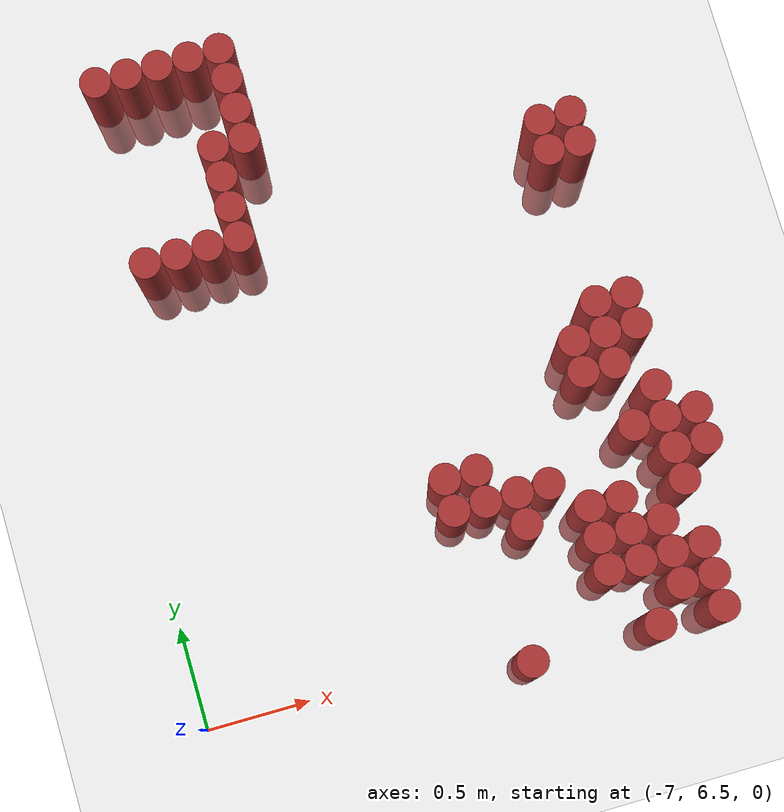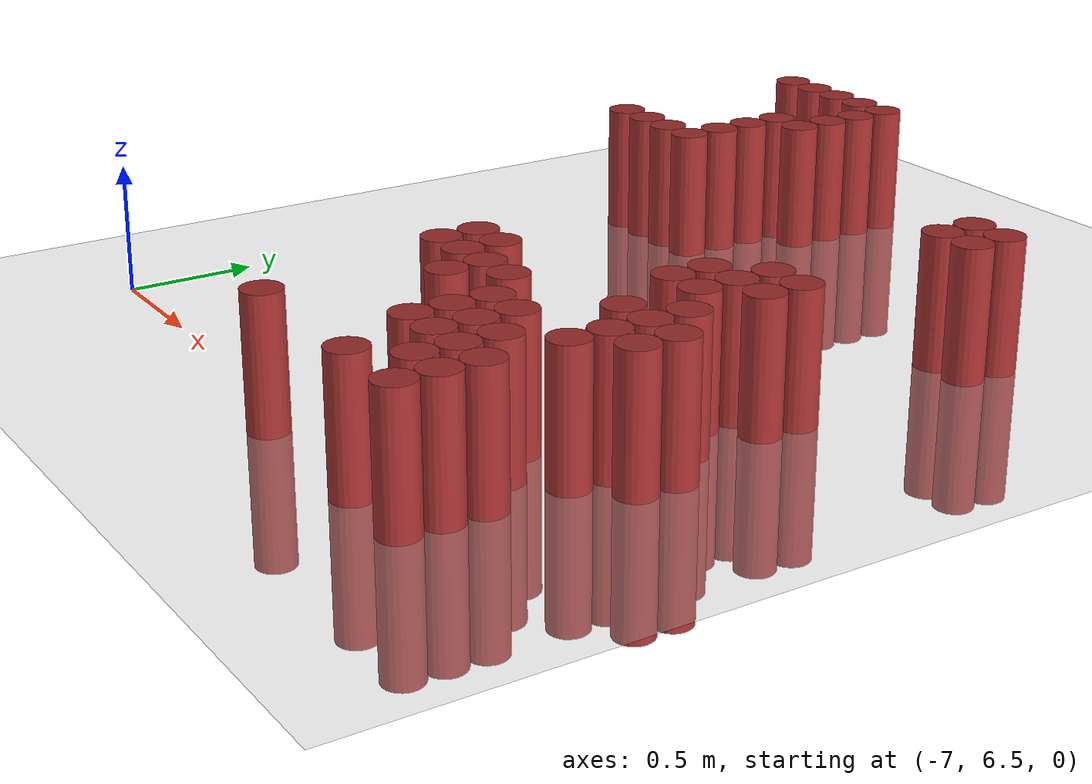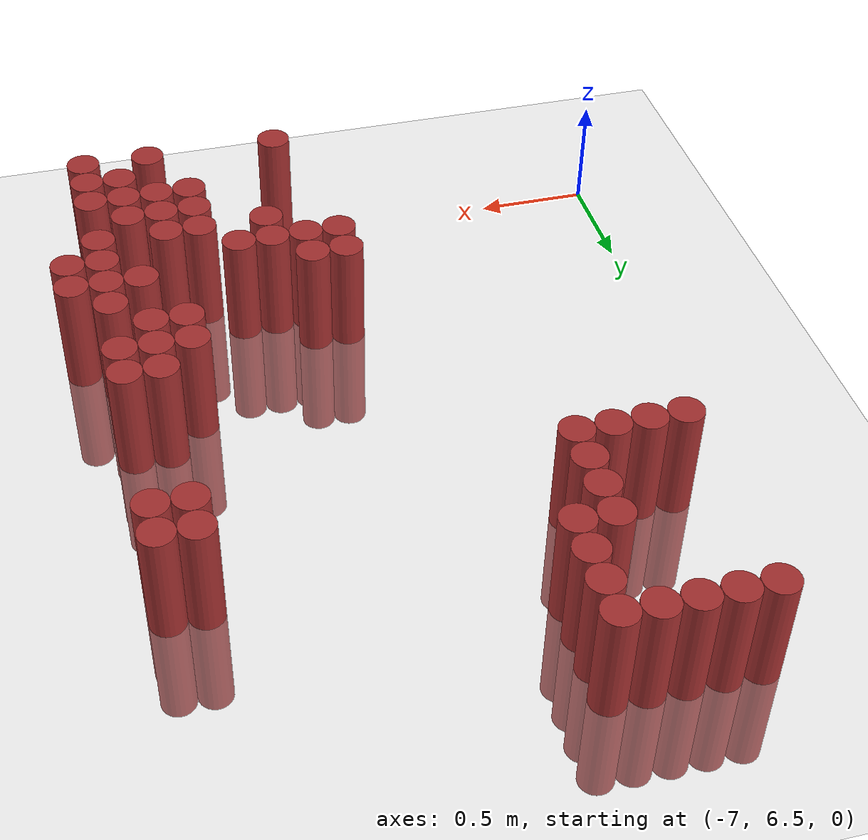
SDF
<sdf version="1.6">
 <world name="default">
  <model name="ground_plane">
   <static>1</static>
   <link name="link">
    <collision name="collision">
     <geometry><plane><normal>0 0 1</normal><size>100 100</size></plane></geometry>
     <surface><friction><ode><mu>100</mu><mu2>50</mu2></ode></friction></surface>
    </collision>
    <visual name="visual">
     <cast_shadows>0</cast_shadows>
     <geometry><plane><normal>0 0 1</normal><size>100 100</size></plane></geometry>
     <material>
      <script><uri>file://media/materials/scripts/gazebo.material</uri><name>Gazebo/Grey</name></script>
     </material>
    </visual>
   </link>
  </model>
  <model name="unit_cylinder_206">
   <static>1</static>
   <pose>-6.675000 8.625000 0.000000 0.000000 0.000000 0.000000</pose>
   <link name="link">
    <inertial>
     <mass>1</mass>
     <inertia><ixx>0.145833</ixx><ixy>0</ixy><ixz>0</ixz><iyy>0.145833</iyy><iyz>0</iyz><izz>0.125</izz></inertia>
    </inertial>
    <collision name="collision">
     <geometry><cylinder><radius>0.075000</radius><length>1</length></cylinder></geometry>
    </collision>
    <visual name="visual">
     <geometry><cylinder><radius>0.075000</radius><length>1</length></cylinder></geometry>
     <material>
      <ambient>0.648000 0.192000 0.192000 1</ambient>
      <diffuse>0.648000 0.192000 0.192000 1</diffuse>
     </material>
     <material>
      <script><name>Gazebo/Grey</name><uri>file://media/materials/scripts/gazebo.material</uri></script>
     </material>
    </visual>
   </link>
  </model>
  <model name="unit_cylinder_207">
   <static>1</static>
   <pose>-6.675000 9.525000 0.000000 0.000000 0.000000 0.000000</pose>
   <link name="link">
    <inertial>
     <mass>1</mass>
     <inertia><ixx>0.145833</ixx><ixy>0</ixy><ixz>0</ixz><iyy>0.145833</iyy><iyz>0</iyz><izz>0.125</izz></inertia>
    </inertial>
    <collision name="collision">
     <geometry><cylinder><radius>0.075000</radius><length>1</length></cylinder></geometry>
    </collision>
    <visual name="visual">
     <geometry><cylinder><radius>0.075000</radius><length>1</length></cylinder></geometry>
     <material>
      <ambient>0.648000 0.192000 0.192000 1</ambient>
      <diffuse>0.648000 0.192000 0.192000 1</diffuse>
     </material>
     <material>
      <script><name>Gazebo/Grey</name><uri>file://media/materials/scripts/gazebo.material</uri></script>
     </material>
    </visual>
   </link>
  </model>
  <model name="unit_cylinder_208">
   <static>1</static>
   <pose>-6.525000 8.625000 0.000000 0.000000 0.000000 0.000000</pose>
   <link name="link">
    <inertial>
     <mass>1</mass>
     <inertia><ixx>0.145833</ixx><ixy>0</ixy><ixz>0</ixz><iyy>0.145833</iyy><iyz>0</iyz><izz>0.125</izz></inertia>
    </inertial>
    <collision name="collision">
     <geometry><cylinder><radius>0.075000</radius><length>1</length></cylinder></geometry>
    </collision>
    <visual name="visual">
     <geometry><cylinder><radius>0.075000</radius><length>1</length></cylinder></geometry>
     <material>
      <ambient>0.648000 0.192000 0.192000 1</ambient>
      <diffuse>0.648000 0.192000 0.192000 1</diffuse>
     </material>
     <material>
      <script><name>Gazebo/Grey</name><uri>file://media/materials/scripts/gazebo.material</uri></script>
     </material>
    </visual>
   </link>
  </model>
  <model name="unit_cylinder_209">
   <static>1</static>
   <pose>-6.525000 9.525000 0.000000 0.000000 0.000000 0.000000</pose>
   <link name="link">
    <inertial>
     <mass>1</mass>
     <inertia><ixx>0.145833</ixx><ixy>0</ixy><ixz>0</ixz><iyy>0.145833</iyy><iyz>0</iyz><izz>0.125</izz></inertia>
    </inertial>
    <collision name="collision">
     <geometry><cylinder><radius>0.075000</radius><length>1</length></cylinder></geometry>
    </collision>
    <visual name="visual">
     <geometry><cylinder><radius>0.075000</radius><length>1</length></cylinder></geometry>
     <material>
      <ambient>0.648000 0.192000 0.192000 1</ambient>
      <diffuse>0.648000 0.192000 0.192000 1</diffuse>
     </material>
     <material>
      <script><name>Gazebo/Grey</name><uri>file://media/materials/scripts/gazebo.material</uri></script>
     </material>
    </visual>
   </link>
  </model>
  <model name="unit_cylinder_210">
   <static>1</static>
   <pose>-6.375000 8.625000 0.000000 0.000000 0.000000 0.000000</pose>
   <link name="link">
    <inertial>
     <mass>1</mass>
     <inertia><ixx>0.145833</ixx><ixy>0</ixy><ixz>0</ixz><iyy>0.145833</iyy><iyz>0</iyz><izz>0.125</izz></inertia>
    </inertial>
    <collision name="collision">
     <geometry><cylinder><radius>0.075000</radius><length>1</length></cylinder></geometry>
    </collision>
    <visual name="visual">
     <geometry><cylinder><radius>0.075000</radius><length>1</length></cylinder></geometry>
     <material>
      <ambient>0.648000 0.192000 0.192000 1</ambient>
      <diffuse>0.648000 0.192000 0.192000 1</diffuse>
     </material>
     <material>
      <script><name>Gazebo/Grey</name><uri>file://media/materials/scripts/gazebo.material</uri></script>
     </material>
    </visual>
   </link>
  </model>
  <model name="unit_cylinder_211">
   <static>1</static>
   <pose>-6.375000 9.525000 0.000000 0.000000 0.000000 0.000000</pose>
   <link name="link">
    <inertial>
     <mass>1</mass>
     <inertia><ixx>0.145833</ixx><ixy>0</ixy><ixz>0</ixz><iyy>0.145833</iyy><iyz>0</iyz><izz>0.125</izz></inertia>
    </inertial>
    <collision name="collision">
     <geometry><cylinder><radius>0.075000</radius><length>1</length></cylinder></geometry>
    </collision>
    <visual name="visual">
     <geometry><cylinder><radius>0.075000</radius><length>1</length></cylinder></geometry>
     <material>
      <ambient>0.648000 0.192000 0.192000 1</ambient>
      <diffuse>0.648000 0.192000 0.192000 1</diffuse>
     </material>
     <material>
      <script><name>Gazebo/Grey</name><uri>file://media/materials/scripts/gazebo.material</uri></script>
     </material>
    </visual>
   </link>
  </model>
  <model name="unit_cylinder_212">
   <static>1</static>
   <pose>-6.225000 8.625000 0.000000 0.000000 0.000000 0.000000</pose>
   <link name="link">
    <inertial>
     <mass>1</mass>
     <inertia><ixx>0.145833</ixx><ixy>0</ixy><ixz>0</ixz><iyy>0.145833</iyy><iyz>0</iyz><izz>0.125</izz></inertia>
    </inertial>
    <collision name="collision">
     <geometry><cylinder><radius>0.075000</radius><length>1</length></cylinder></geometry>
    </collision>
    <visual name="visual">
     <geometry><cylinder><radius>0.075000</radius><length>1</length></cylinder></geometry>
     <material>
      <ambient>0.648000 0.192000 0.192000 1</ambient>
      <diffuse>0.648000 0.192000 0.192000 1</diffuse>
     </material>
     <material>
      <script><name>Gazebo/Grey</name><uri>file://media/materials/scripts/gazebo.material</uri></script>
     </material>
    </visual>
   </link>
  </model>
  <model name="unit_cylinder_213">
   <static>1</static>
   <pose>-6.225000 8.775000 0.000000 0.000000 0.000000 0.000000</pose>
   <link name="link">
    <inertial>
     <mass>1</mass>
     <inertia><ixx>0.145833</ixx><ixy>0</ixy><ixz>0</ixz><iyy>0.145833</iyy><iyz>0</iyz><izz>0.125</izz></inertia>
    </inertial>
    <collision name="collision">
     <geometry><cylinder><radius>0.075000</radius><length>1</length></cylinder></geometry>
    </collision>
    <visual name="visual">
     <geometry><cylinder><radius>0.075000</radius><length>1</length></cylinder></geometry>
     <material>
      <ambient>0.648000 0.192000 0.192000 1</ambient>
      <diffuse>0.648000 0.192000 0.192000 1</diffuse>
     </material>
     <material>
      <script><name>Gazebo/Grey</name><uri>file://media/materials/scripts/gazebo.material</uri></script>
     </material>
    </visual>
   </link>
  </model>
  <model name="unit_cylinder_214">
   <static>1</static>
   <pose>-6.225000 8.925000 0.000000 0.000000 0.000000 0.000000</pose>
   <link name="link">
    <inertial>
     <mass>1</mass>
     <inertia><ixx>0.145833</ixx><ixy>0</ixy><ixz>0</ixz><iyy>0.145833</iyy><iyz>0</iyz><izz>0.125</izz></inertia>
    </inertial>
    <collision name="collision">
     <geometry><cylinder><radius>0.075000</radius><length>1</length></cylinder></geometry>
    </collision>
    <visual name="visual">
     <geometry><cylinder><radius>0.075000</radius><length>1</length></cylinder></geometry>
     <material>
      <ambient>0.648000 0.192000 0.192000 1</ambient>
      <diffuse>0.648000 0.192000 0.192000 1</diffuse>
     </material>
     <material>
      <script><name>Gazebo/Grey</name><uri>file://media/materials/scripts/gazebo.material</uri></script>
     </material>
    </visual>
   </link>
  </model>
  <model name="unit_cylinder_215">
   <static>1</static>
   <pose>-6.225000 9.075000 0.000000 0.000000 0.000000 0.000000</pose>
   <link name="link">
    <inertial>
     <mass>1</mass>
     <inertia><ixx>0.145833</ixx><ixy>0</ixy><ixz>0</ixz><iyy>0.145833</iyy><iyz>0</iyz><izz>0.125</izz></inertia>
    </inertial>
    <collision name="collision">
     <geometry><cylinder><radius>0.075000</radius><length>1</length></cylinder></geometry>
    </collision>
    <visual name="visual">
     <geometry><cylinder><radius>0.075000</radius><length>1</length></cylinder></geometry>
     <material>
      <ambient>0.648000 0.192000 0.192000 1</ambient>
      <diffuse>0.648000 0.192000 0.192000 1</diffuse>
     </material>
     <material>
      <script><name>Gazebo/Grey</name><uri>file://media/materials/scripts/gazebo.material</uri></script>
     </material>
    </visual>
   </link>
  </model>
  <model name="unit_cylinder_216">
   <static>1</static>
   <pose>-6.225000 9.525000 0.000000 0.000000 0.000000 0.000000</pose>
   <link name="link">
    <inertial>
     <mass>1</mass>
     <inertia><ixx>0.145833</ixx><ixy>0</ixy><ixz>0</ixz><iyy>0.145833</iyy><iyz>0</iyz><izz>0.125</izz></inertia>
    </inertial>
    <collision name="collision">
     <geometry><cylinder><radius>0.075000</radius><length>1</length></cylinder></geometry>
    </collision>
    <visual name="visual">
     <geometry><cylinder><radius>0.075000</radius><length>1</length></cylinder></geometry>
     <material>
      <ambient>0.648000 0.192000 0.192000 1</ambient>
      <diffuse>0.648000 0.192000 0.192000 1</diffuse>
     </material>
     <material>
      <script><name>Gazebo/Grey</name><uri>file://media/materials/scripts/gazebo.material</uri></script>
     </material>
    </visual>
   </link>
  </model>
  <model name="unit_cylinder_217">
   <static>1</static>
   <pose>-6.075000 9.075000 0.000000 0.000000 0.000000 0.000000</pose>
   <link name="link">
    <inertial>
     <mass>1</mass>
     <inertia><ixx>0.145833</ixx><ixy>0</ixy><ixz>0</ixz><iyy>0.145833</iyy><iyz>0</iyz><izz>0.125</izz></inertia>
    </inertial>
    <collision name="collision">
     <geometry><cylinder><radius>0.075000</radius><length>1</length></cylinder></geometry>
    </collision>
    <visual name="visual">
     <geometry><cylinder><radius>0.075000</radius><length>1</length></cylinder></geometry>
     <material>
      <ambient>0.648000 0.192000 0.192000 1</ambient>
      <diffuse>0.648000 0.192000 0.192000 1</diffuse>
     </material>
     <material>
      <script><name>Gazebo/Grey</name><uri>file://media/materials/scripts/gazebo.material</uri></script>
     </material>
    </visual>
   </link>
  </model>
  <model name="unit_cylinder_218">
   <static>1</static>
   <pose>-6.075000 9.225000 0.000000 0.000000 0.000000 0.000000</pose>
   <link name="link">
    <inertial>
     <mass>1</mass>
     <inertia><ixx>0.145833</ixx><ixy>0</ixy><ixz>0</ixz><iyy>0.145833</iyy><iyz>0</iyz><izz>0.125</izz></inertia>
    </inertial>
    <collision name="collision">
     <geometry><cylinder><radius>0.075000</radius><length>1</length></cylinder></geometry>
    </collision>
    <visual name="visual">
     <geometry><cylinder><radius>0.075000</radius><length>1</length></cylinder></geometry>
     <material>
      <ambient>0.648000 0.192000 0.192000 1</ambient>
      <diffuse>0.648000 0.192000 0.192000 1</diffuse>
     </material>
     <material>
      <script><name>Gazebo/Grey</name><uri>file://media/materials/scripts/gazebo.material</uri></script>
     </material>
    </visual>
   </link>
  </model>
  <model name="unit_cylinder_219">
   <static>1</static>
   <pose>-6.075000 9.375000 0.000000 0.000000 0.000000 0.000000</pose>
   <link name="link">
    <inertial>
     <mass>1</mass>
     <inertia><ixx>0.145833</ixx><ixy>0</ixy><ixz>0</ixz><iyy>0.145833</iyy><iyz>0</iyz><izz>0.125</izz></inertia>
    </inertial>
    <collision name="collision">
     <geometry><cylinder><radius>0.075000</radius><length>1</length></cylinder></geometry>
    </collision>
    <visual name="visual">
     <geometry><cylinder><radius>0.075000</radius><length>1</length></cylinder></geometry>
     <material>
      <ambient>0.648000 0.192000 0.192000 1</ambient>
      <diffuse>0.648000 0.192000 0.192000 1</diffuse>
     </material>
     <material>
      <script><name>Gazebo/Grey</name><uri>file://media/materials/scripts/gazebo.material</uri></script>
     </material>
    </visual>
   </link>
  </model>
  <model name="unit_cylinder_220">
   <static>1</static>
   <pose>-6.075000 9.525000 0.000000 0.000000 0.000000 0.000000</pose>
   <link name="link">
    <inertial>
     <mass>1</mass>
     <inertia><ixx>0.145833</ixx><ixy>0</ixy><ixz>0</ixz><iyy>0.145833</iyy><iyz>0</iyz><izz>0.125</izz></inertia>
    </inertial>
    <collision name="collision">
     <geometry><cylinder><radius>0.075000</radius><length>1</length></cylinder></geometry>
    </collision>
    <visual name="visual">
     <geometry><cylinder><radius>0.075000</radius><length>1</length></cylinder></geometry>
     <material>
      <ambient>0.648000 0.192000 0.192000 1</ambient>
      <diffuse>0.648000 0.192000 0.192000 1</diffuse>
     </material>
     <material>
      <script><name>Gazebo/Grey</name><uri>file://media/materials/scripts/gazebo.material</uri></script>
     </material>
    </visual>
   </link>
  </model>
  <model name="unit_cylinder_222">
   <static>1</static>
   <pose>-5.625000 7.125000 0.000000 0.000000 0.000000 0.000000</pose>
   <link name="link">
    <inertial>
     <mass>1</mass>
     <inertia><ixx>0.145833</ixx><ixy>0</ixy><ixz>0</ixz><iyy>0.145833</iyy><iyz>0</iyz><izz>0.125</izz></inertia>
    </inertial>
    <collision name="collision">
     <geometry><cylinder><radius>0.075000</radius><length>1</length></cylinder></geometry>
    </collision>
    <visual name="visual">
     <geometry><cylinder><radius>0.075000</radius><length>1</length></cylinder></geometry>
     <material>
      <ambient>0.648000 0.192000 0.192000 1</ambient>
      <diffuse>0.648000 0.192000 0.192000 1</diffuse>
     </material>
     <material>
      <script><name>Gazebo/Grey</name><uri>file://media/materials/scripts/gazebo.material</uri></script>
     </material>
    </visual>
   </link>
  </model>
  <model name="unit_cylinder_223">
   <static>1</static>
   <pose>-5.625000 7.275000 0.000000 0.000000 0.000000 0.000000</pose>
   <link name="link">
    <inertial>
     <mass>1</mass>
     <inertia><ixx>0.145833</ixx><ixy>0</ixy><ixz>0</ixz><iyy>0.145833</iyy><iyz>0</iyz><izz>0.125</izz></inertia>
    </inertial>
    <collision name="collision">
     <geometry><cylinder><radius>0.075000</radius><length>1</length></cylinder></geometry>
    </collision>
    <visual name="visual">
     <geometry><cylinder><radius>0.075000</radius><length>1</length></cylinder></geometry>
     <material>
      <ambient>0.648000 0.192000 0.192000 1</ambient>
      <diffuse>0.648000 0.192000 0.192000 1</diffuse>
     </material>
     <material>
      <script><name>Gazebo/Grey</name><uri>file://media/materials/scripts/gazebo.material</uri></script>
     </material>
    </visual>
   </link>
  </model>
  <model name="unit_cylinder_226">
   <static>1</static>
   <pose>-5.475000 6.375000 0.000000 0.000000 0.000000 0.000000</pose>
   <link name="link">
    <inertial>
     <mass>1</mass>
     <inertia><ixx>0.145833</ixx><ixy>0</ixy><ixz>0</ixz><iyy>0.145833</iyy><iyz>0</iyz><izz>0.125</izz></inertia>
    </inertial>
    <collision name="collision">
     <geometry><cylinder><radius>0.075000</radius><length>1</length></cylinder></geometry>
    </collision>
    <visual name="visual">
     <geometry><cylinder><radius>0.075000</radius><length>1</length></cylinder></geometry>
     <material>
      <ambient>0.648000 0.192000 0.192000 1</ambient>
      <diffuse>0.648000 0.192000 0.192000 1</diffuse>
     </material>
     <material>
      <script><name>Gazebo/Grey</name><uri>file://media/materials/scripts/gazebo.material</uri></script>
     </material>
    </visual>
   </link>
  </model>
  <model name="unit_cylinder_227">
   <static>1</static>
   <pose>-5.475000 7.125000 0.000000 0.000000 0.000000 0.000000</pose>
   <link name="link">
    <inertial>
     <mass>1</mass>
     <inertia><ixx>0.145833</ixx><ixy>0</ixy><ixz>0</ixz><iyy>0.145833</iyy><iyz>0</iyz><izz>0.125</izz></inertia>
    </inertial>
    <collision name="collision">
     <geometry><cylinder><radius>0.075000</radius><length>1</length></cylinder></geometry>
    </collision>
    <visual name="visual">
     <geometry><cylinder><radius>0.075000</radius><length>1</length></cylinder></geometry>
     <material>
      <ambient>0.648000 0.192000 0.192000 1</ambient>
      <diffuse>0.648000 0.192000 0.192000 1</diffuse>
     </material>
     <material>
      <script><name>Gazebo/Grey</name><uri>file://media/materials/scripts/gazebo.material</uri></script>
     </material>
    </visual>
   </link>
  </model>
  <model name="unit_cylinder_228">
   <static>1</static>
   <pose>-5.475000 7.275000 0.000000 0.000000 0.000000 0.000000</pose>
   <link name="link">
    <inertial>
     <mass>1</mass>
     <inertia><ixx>0.145833</ixx><ixy>0</ixy><ixz>0</ixz><iyy>0.145833</iyy><iyz>0</iyz><izz>0.125</izz></inertia>
    </inertial>
    <collision name="collision">
     <geometry><cylinder><radius>0.075000</radius><length>1</length></cylinder></geometry>
    </collision>
    <visual name="visual">
     <geometry><cylinder><radius>0.075000</radius><length>1</length></cylinder></geometry>
     <material>
      <ambient>0.648000 0.192000 0.192000 1</ambient>
      <diffuse>0.648000 0.192000 0.192000 1</diffuse>
     </material>
     <material>
      <script><name>Gazebo/Grey</name><uri>file://media/materials/scripts/gazebo.material</uri></script>
     </material>
    </visual>
   </link>
  </model>
  <model name="unit_cylinder_231">
   <static>1</static>
   <pose>-5.325000 6.975000 0.000000 0.000000 0.000000 0.000000</pose>
   <link name="link">
    <inertial>
     <mass>1</mass>
     <inertia><ixx>0.145833</ixx><ixy>0</ixy><ixz>0</ixz><iyy>0.145833</iyy><iyz>0</iyz><izz>0.125</izz></inertia>
    </inertial>
    <collision name="collision">
     <geometry><cylinder><radius>0.075000</radius><length>1</length></cylinder></geometry>
    </collision>
    <visual name="visual">
     <geometry><cylinder><radius>0.075000</radius><length>1</length></cylinder></geometry>
     <material>
      <ambient>0.648000 0.192000 0.192000 1</ambient>
      <diffuse>0.648000 0.192000 0.192000 1</diffuse>
     </material>
     <material>
      <script><name>Gazebo/Grey</name><uri>file://media/materials/scripts/gazebo.material</uri></script>
     </material>
    </visual>
   </link>
  </model>
  <model name="unit_cylinder_232">
   <static>1</static>
   <pose>-5.325000 7.125000 0.000000 0.000000 0.000000 0.000000</pose>
   <link name="link">
    <inertial>
     <mass>1</mass>
     <inertia><ixx>0.145833</ixx><ixy>0</ixy><ixz>0</ixz><iyy>0.145833</iyy><iyz>0</iyz><izz>0.125</izz></inertia>
    </inertial>
    <collision name="collision">
     <geometry><cylinder><radius>0.075000</radius><length>1</length></cylinder></geometry>
    </collision>
    <visual name="visual">
     <geometry><cylinder><radius>0.075000</radius><length>1</length></cylinder></geometry>
     <material>
      <ambient>0.648000 0.192000 0.192000 1</ambient>
      <diffuse>0.648000 0.192000 0.192000 1</diffuse>
     </material>
     <material>
      <script><name>Gazebo/Grey</name><uri>file://media/materials/scripts/gazebo.material</uri></script>
     </material>
    </visual>
   </link>
  </model>
  <model name="unit_cylinder_238">
   <static>1</static>
   <pose>-5.175000 7.125000 0.000000 0.000000 0.000000 0.000000</pose>
   <link name="link">
    <inertial>
     <mass>1</mass>
     <inertia><ixx>0.145833</ixx><ixy>0</ixy><ixz>0</ixz><iyy>0.145833</iyy><iyz>0</iyz><izz>0.125</izz></inertia>
    </inertial>
    <collision name="collision">
     <geometry><cylinder><radius>0.075000</radius><length>1</length></cylinder></geometry>
    </collision>
    <visual name="visual">
     <geometry><cylinder><radius>0.075000</radius><length>1</length></cylinder></geometry>
     <material>
      <ambient>0.648000 0.192000 0.192000 1</ambient>
      <diffuse>0.648000 0.192000 0.192000 1</diffuse>
     </material>
     <material>
      <script><name>Gazebo/Grey</name><uri>file://media/materials/scripts/gazebo.material</uri></script>
     </material>
    </visual>
   </link>
  </model>
  <model name="unit_cylinder_246">
   <static>1</static>
   <pose>-5.025000 6.675000 0.000000 0.000000 0.000000 0.000000</pose>
   <link name="link">
    <inertial>
     <mass>1</mass>
     <inertia><ixx>0.145833</ixx><ixy>0</ixy><ixz>0</ixz><iyy>0.145833</iyy><iyz>0</iyz><izz>0.125</izz></inertia>
    </inertial>
    <collision name="collision">
     <geometry><cylinder><radius>0.075000</radius><length>1</length></cylinder></geometry>
    </collision>
    <visual name="visual">
     <geometry><cylinder><radius>0.075000</radius><length>1</length></cylinder></geometry>
     <material>
      <ambient>0.648000 0.192000 0.192000 1</ambient>
      <diffuse>0.648000 0.192000 0.192000 1</diffuse>
     </material>
     <material>
      <script><name>Gazebo/Grey</name><uri>file://media/materials/scripts/gazebo.material</uri></script>
     </material>
    </visual>
   </link>
  </model>
  <model name="unit_cylinder_247">
   <static>1</static>
   <pose>-5.025000 6.825000 0.000000 0.000000 0.000000 0.000000</pose>
   <link name="link">
    <inertial>
     <mass>1</mass>
     <inertia><ixx>0.145833</ixx><ixy>0</ixy><ixz>0</ixz><iyy>0.145833</iyy><iyz>0</iyz><izz>0.125</izz></inertia>
    </inertial>
    <collision name="collision">
     <geometry><cylinder><radius>0.075000</radius><length>1</length></cylinder></geometry>
    </collision>
    <visual name="visual">
     <geometry><cylinder><radius>0.075000</radius><length>1</length></cylinder></geometry>
     <material>
      <ambient>0.648000 0.192000 0.192000 1</ambient>
      <diffuse>0.648000 0.192000 0.192000 1</diffuse>
     </material>
     <material>
      <script><name>Gazebo/Grey</name><uri>file://media/materials/scripts/gazebo.material</uri></script>
     </material>
    </visual>
   </link>
  </model>
  <model name="unit_cylinder_248">
   <static>1</static>
   <pose>-5.025000 6.975000 0.000000 0.000000 0.000000 0.000000</pose>
   <link name="link">
    <inertial>
     <mass>1</mass>
     <inertia><ixx>0.145833</ixx><ixy>0</ixy><ixz>0</ixz><iyy>0.145833</iyy><iyz>0</iyz><izz>0.125</izz></inertia>
    </inertial>
    <collision name="collision">
     <geometry><cylinder><radius>0.075000</radius><length>1</length></cylinder></geometry>
    </collision>
    <visual name="visual">
     <geometry><cylinder><radius>0.075000</radius><length>1</length></cylinder></geometry>
     <material>
      <ambient>0.648000 0.192000 0.192000 1</ambient>
      <diffuse>0.648000 0.192000 0.192000 1</diffuse>
     </material>
     <material>
      <script><name>Gazebo/Grey</name><uri>file://media/materials/scripts/gazebo.material</uri></script>
     </material>
    </visual>
   </link>
  </model>
  <model name="unit_cylinder_254">
   <static>1</static>
   <pose>-4.875000 6.375000 0.000000 0.000000 0.000000 0.000000</pose>
   <link name="link">
    <inertial>
     <mass>1</mass>
     <inertia><ixx>0.145833</ixx><ixy>0</ixy><ixz>0</ixz><iyy>0.145833</iyy><iyz>0</iyz><izz>0.125</izz></inertia>
    </inertial>
    <collision name="collision">
     <geometry><cylinder><radius>0.075000</radius><length>1</length></cylinder></geometry>
    </collision>
    <visual name="visual">
     <geometry><cylinder><radius>0.075000</radius><length>1</length></cylinder></geometry>
     <material>
      <ambient>0.648000 0.192000 0.192000 1</ambient>
      <diffuse>0.648000 0.192000 0.192000 1</diffuse>
     </material>
     <material>
      <script><name>Gazebo/Grey</name><uri>file://media/materials/scripts/gazebo.material</uri></script>
     </material>
    </visual>
   </link>
  </model>
  <model name="unit_cylinder_255">
   <static>1</static>
   <pose>-4.875000 6.675000 0.000000 0.000000 0.000000 0.000000</pose>
   <link name="link">
    <inertial>
     <mass>1</mass>
     <inertia><ixx>0.145833</ixx><ixy>0</ixy><ixz>0</ixz><iyy>0.145833</iyy><iyz>0</iyz><izz>0.125</izz></inertia>
    </inertial>
    <collision name="collision">
     <geometry><cylinder><radius>0.075000</radius><length>1</length></cylinder></geometry>
    </collision>
    <visual name="visual">
     <geometry><cylinder><radius>0.075000</radius><length>1</length></cylinder></geometry>
     <material>
      <ambient>0.648000 0.192000 0.192000 1</ambient>
      <diffuse>0.648000 0.192000 0.192000 1</diffuse>
     </material>
     <material>
      <script><name>Gazebo/Grey</name><uri>file://media/materials/scripts/gazebo.material</uri></script>
     </material>
    </visual>
   </link>
  </model>
  <model name="unit_cylinder_256">
   <static>1</static>
   <pose>-4.875000 6.825000 0.000000 0.000000 0.000000 0.000000</pose>
   <link name="link">
    <inertial>
     <mass>1</mass>
     <inertia><ixx>0.145833</ixx><ixy>0</ixy><ixz>0</ixz><iyy>0.145833</iyy><iyz>0</iyz><izz>0.125</izz></inertia>
    </inertial>
    <collision name="collision">
     <geometry><cylinder><radius>0.075000</radius><length>1</length></cylinder></geometry>
    </collision>
    <visual name="visual">
     <geometry><cylinder><radius>0.075000</radius><length>1</length></cylinder></geometry>
     <material>
      <ambient>0.648000 0.192000 0.192000 1</ambient>
      <diffuse>0.648000 0.192000 0.192000 1</diffuse>
     </material>
     <material>
      <script><name>Gazebo/Grey</name><uri>file://media/materials/scripts/gazebo.material</uri></script>
     </material>
    </visual>
   </link>
  </model>
  <model name="unit_cylinder_257">
   <static>1</static>
   <pose>-4.875000 6.975000 0.000000 0.000000 0.000000 0.000000</pose>
   <link name="link">
    <inertial>
     <mass>1</mass>
     <inertia><ixx>0.145833</ixx><ixy>0</ixy><ixz>0</ixz><iyy>0.145833</iyy><iyz>0</iyz><izz>0.125</izz></inertia>
    </inertial>
    <collision name="collision">
     <geometry><cylinder><radius>0.075000</radius><length>1</length></cylinder></geometry>
    </collision>
    <visual name="visual">
     <geometry><cylinder><radius>0.075000</radius><length>1</length></cylinder></geometry>
     <material>
      <ambient>0.648000 0.192000 0.192000 1</ambient>
      <diffuse>0.648000 0.192000 0.192000 1</diffuse>
     </material>
     <material>
      <script><name>Gazebo/Grey</name><uri>file://media/materials/scripts/gazebo.material</uri></script>
     </material>
    </visual>
   </link>
  </model>
  <model name="unit_cylinder_258">
   <static>1</static>
   <pose>-4.875000 7.575000 0.000000 0.000000 0.000000 0.000000</pose>
   <link name="link">
    <inertial>
     <mass>1</mass>
     <inertia><ixx>0.145833</ixx><ixy>0</ixy><ixz>0</ixz><iyy>0.145833</iyy><iyz>0</iyz><izz>0.125</izz></inertia>
    </inertial>
    <collision name="collision">
     <geometry><cylinder><radius>0.075000</radius><length>1</length></cylinder></geometry>
    </collision>
    <visual name="visual">
     <geometry><cylinder><radius>0.075000</radius><length>1</length></cylinder></geometry>
     <material>
      <ambient>0.648000 0.192000 0.192000 1</ambient>
      <diffuse>0.648000 0.192000 0.192000 1</diffuse>
     </material>
     <material>
      <script><name>Gazebo/Grey</name><uri>file://media/materials/scripts/gazebo.material</uri></script>
     </material>
    </visual>
   </link>
  </model>
  <model name="unit_cylinder_259">
   <static>1</static>
   <pose>-4.875000 7.725000 0.000000 0.000000 0.000000 0.000000</pose>
   <link name="link">
    <inertial>
     <mass>1</mass>
     <inertia><ixx>0.145833</ixx><ixy>0</ixy><ixz>0</ixz><iyy>0.145833</iyy><iyz>0</iyz><izz>0.125</izz></inertia>
    </inertial>
    <collision name="collision">
     <geometry><cylinder><radius>0.075000</radius><length>1</length></cylinder></geometry>
    </collision>
    <visual name="visual">
     <geometry><cylinder><radius>0.075000</radius><length>1</length></cylinder></geometry>
     <material>
      <ambient>0.648000 0.192000 0.192000 1</ambient>
      <diffuse>0.648000 0.192000 0.192000 1</diffuse>
     </material>
     <material>
      <script><name>Gazebo/Grey</name><uri>file://media/materials/scripts/gazebo.material</uri></script>
     </material>
    </visual>
   </link>
  </model>
  <model name="unit_cylinder_261">
   <static>1</static>
   <pose>-4.725000 6.525000 0.000000 0.000000 0.000000 0.000000</pose>
   <link name="link">
    <inertial>
     <mass>1</mass>
     <inertia><ixx>0.145833</ixx><ixy>0</ixy><ixz>0</ixz><iyy>0.145833</iyy><iyz>0</iyz><izz>0.125</izz></inertia>
    </inertial>
    <collision name="collision">
     <geometry><cylinder><radius>0.075000</radius><length>1</length></cylinder></geometry>
    </collision>
    <visual name="visual">
     <geometry><cylinder><radius>0.075000</radius><length>1</length></cylinder></geometry>
     <material>
      <ambient>0.648000 0.192000 0.192000 1</ambient>
      <diffuse>0.648000 0.192000 0.192000 1</diffuse>
     </material>
     <material>
      <script><name>Gazebo/Grey</name><uri>file://media/materials/scripts/gazebo.material</uri></script>
     </material>
    </visual>
   </link>
  </model>
  <model name="unit_cylinder_262">
   <static>1</static>
   <pose>-4.725000 6.675000 0.000000 0.000000 0.000000 0.000000</pose>
   <link name="link">
    <inertial>
     <mass>1</mass>
     <inertia><ixx>0.145833</ixx><ixy>0</ixy><ixz>0</ixz><iyy>0.145833</iyy><iyz>0</iyz><izz>0.125</izz></inertia>
    </inertial>
    <collision name="collision">
     <geometry><cylinder><radius>0.075000</radius><length>1</length></cylinder></geometry>
    </collision>
    <visual name="visual">
     <geometry><cylinder><radius>0.075000</radius><length>1</length></cylinder></geometry>
     <material>
      <ambient>0.648000 0.192000 0.192000 1</ambient>
      <diffuse>0.648000 0.192000 0.192000 1</diffuse>
     </material>
     <material>
      <script><name>Gazebo/Grey</name><uri>file://media/materials/scripts/gazebo.material</uri></script>
     </material>
    </visual>
   </link>
  </model>
  <model name="unit_cylinder_263">
   <static>1</static>
   <pose>-4.725000 6.825000 0.000000 0.000000 0.000000 0.000000</pose>
   <link name="link">
    <inertial>
     <mass>1</mass>
     <inertia><ixx>0.145833</ixx><ixy>0</ixy><ixz>0</ixz><iyy>0.145833</iyy><iyz>0</iyz><izz>0.125</izz></inertia>
    </inertial>
    <collision name="collision">
     <geometry><cylinder><radius>0.075000</radius><length>1</length></cylinder></geometry>
    </collision>
    <visual name="visual">
     <geometry><cylinder><radius>0.075000</radius><length>1</length></cylinder></geometry>
     <material>
      <ambient>0.648000 0.192000 0.192000 1</ambient>
      <diffuse>0.648000 0.192000 0.192000 1</diffuse>
     </material>
     <material>
      <script><name>Gazebo/Grey</name><uri>file://media/materials/scripts/gazebo.material</uri></script>
     </material>
    </visual>
   </link>
  </model>
  <model name="unit_cylinder_264">
   <static>1</static>
   <pose>-4.725000 7.275000 0.000000 0.000000 0.000000 0.000000</pose>
   <link name="link">
    <inertial>
     <mass>1</mass>
     <inertia><ixx>0.145833</ixx><ixy>0</ixy><ixz>0</ixz><iyy>0.145833</iyy><iyz>0</iyz><izz>0.125</izz></inertia>
    </inertial>
    <collision name="collision">
     <geometry><cylinder><radius>0.075000</radius><length>1</length></cylinder></geometry>
    </collision>
    <visual name="visual">
     <geometry><cylinder><radius>0.075000</radius><length>1</length></cylinder></geometry>
     <material>
      <ambient>0.648000 0.192000 0.192000 1</ambient>
      <diffuse>0.648000 0.192000 0.192000 1</diffuse>
     </material>
     <material>
      <script><name>Gazebo/Grey</name><uri>file://media/materials/scripts/gazebo.material</uri></script>
     </material>
    </visual>
   </link>
  </model>
  <model name="unit_cylinder_265">
   <static>1</static>
   <pose>-4.725000 7.575000 0.000000 0.000000 0.000000 0.000000</pose>
   <link name="link">
    <inertial>
     <mass>1</mass>
     <inertia><ixx>0.145833</ixx><ixy>0</ixy><ixz>0</ixz><iyy>0.145833</iyy><iyz>0</iyz><izz>0.125</izz></inertia>
    </inertial>
    <collision name="collision">
     <geometry><cylinder><radius>0.075000</radius><length>1</length></cylinder></geometry>
    </collision>
    <visual name="visual">
     <geometry><cylinder><radius>0.075000</radius><length>1</length></cylinder></geometry>
     <material>
      <ambient>0.648000 0.192000 0.192000 1</ambient>
      <diffuse>0.648000 0.192000 0.192000 1</diffuse>
     </material>
     <material>
      <script><name>Gazebo/Grey</name><uri>file://media/materials/scripts/gazebo.material</uri></script>
     </material>
    </visual>
   </link>
  </model>
  <model name="unit_cylinder_266">
   <static>1</static>
   <pose>-4.725000 7.725000 0.000000 0.000000 0.000000 0.000000</pose>
   <link name="link">
    <inertial>
     <mass>1</mass>
     <inertia><ixx>0.145833</ixx><ixy>0</ixy><ixz>0</ixz><iyy>0.145833</iyy><iyz>0</iyz><izz>0.125</izz></inertia>
    </inertial>
    <collision name="collision">
     <geometry><cylinder><radius>0.075000</radius><length>1</length></cylinder></geometry>
    </collision>
    <visual name="visual">
     <geometry><cylinder><radius>0.075000</radius><length>1</length></cylinder></geometry>
     <material>
      <ambient>0.648000 0.192000 0.192000 1</ambient>
      <diffuse>0.648000 0.192000 0.192000 1</diffuse>
     </material>
     <material>
      <script><name>Gazebo/Grey</name><uri>file://media/materials/scripts/gazebo.material</uri></script>
     </material>
    </visual>
   </link>
  </model>
  <model name="unit_cylinder_267">
   <static>1</static>
   <pose>-4.725000 7.875000 0.000000 0.000000 0.000000 0.000000</pose>
   <link name="link">
    <inertial>
     <mass>1</mass>
     <inertia><ixx>0.145833</ixx><ixy>0</ixy><ixz>0</ixz><iyy>0.145833</iyy><iyz>0</iyz><izz>0.125</izz></inertia>
    </inertial>
    <collision name="collision">
     <geometry><cylinder><radius>0.075000</radius><length>1</length></cylinder></geometry>
    </collision>
    <visual name="visual">
     <geometry><cylinder><radius>0.075000</radius><length>1</length></cylinder></geometry>
     <material>
      <ambient>0.648000 0.192000 0.192000 1</ambient>
      <diffuse>0.648000 0.192000 0.192000 1</diffuse>
     </material>
     <material>
      <script><name>Gazebo/Grey</name><uri>file://media/materials/scripts/gazebo.material</uri></script>
     </material>
    </visual>
   </link>
  </model>
  <model name="unit_cylinder_268">
   <static>1</static>
   <pose>-4.725000 8.625000 0.000000 0.000000 0.000000 0.000000</pose>
   <link name="link">
    <inertial>
     <mass>1</mass>
     <inertia><ixx>0.145833</ixx><ixy>0</ixy><ixz>0</ixz><iyy>0.145833</iyy><iyz>0</iyz><izz>0.125</izz></inertia>
    </inertial>
    <collision name="collision">
     <geometry><cylinder><radius>0.075000</radius><length>1</length></cylinder></geometry>
    </collision>
    <visual name="visual">
     <geometry><cylinder><radius>0.075000</radius><length>1</length></cylinder></geometry>
     <material>
      <ambient>0.648000 0.192000 0.192000 1</ambient>
      <diffuse>0.648000 0.192000 0.192000 1</diffuse>
     </material>
     <material>
      <script><name>Gazebo/Grey</name><uri>file://media/materials/scripts/gazebo.material</uri></script>
     </material>
    </visual>
   </link>
  </model>
  <model name="unit_cylinder_269">
   <static>1</static>
   <pose>-4.725000 8.775000 0.000000 0.000000 0.000000 0.000000</pose>
   <link name="link">
    <inertial>
     <mass>1</mass>
     <inertia><ixx>0.145833</ixx><ixy>0</ixy><ixz>0</ixz><iyy>0.145833</iyy><iyz>0</iyz><izz>0.125</izz></inertia>
    </inertial>
    <collision name="collision">
     <geometry><cylinder><radius>0.075000</radius><length>1</length></cylinder></geometry>
    </collision>
    <visual name="visual">
     <geometry><cylinder><radius>0.075000</radius><length>1</length></cylinder></geometry>
     <material>
      <ambient>0.648000 0.192000 0.192000 1</ambient>
      <diffuse>0.648000 0.192000 0.192000 1</diffuse>
     </material>
     <material>
      <script><name>Gazebo/Grey</name><uri>file://media/materials/scripts/gazebo.material</uri></script>
     </material>
    </visual>
   </link>
  </model>
  <model name="unit_cylinder_270">
   <static>1</static>
   <pose>-4.575000 6.375000 0.000000 0.000000 0.000000 0.000000</pose>
   <link name="link">
    <inertial>
     <mass>1</mass>
     <inertia><ixx>0.145833</ixx><ixy>0</ixy><ixz>0</ixz><iyy>0.145833</iyy><iyz>0</iyz><izz>0.125</izz></inertia>
    </inertial>
    <collision name="collision">
     <geometry><cylinder><radius>0.075000</radius><length>1</length></cylinder></geometry>
    </collision>
    <visual name="visual">
     <geometry><cylinder><radius>0.075000</radius><length>1</length></cylinder></geometry>
     <material>
      <ambient>0.648000 0.192000 0.192000 1</ambient>
      <diffuse>0.648000 0.192000 0.192000 1</diffuse>
     </material>
     <material>
      <script><name>Gazebo/Grey</name><uri>file://media/materials/scripts/gazebo.material</uri></script>
     </material>
    </visual>
   </link>
  </model>
  <model name="unit_cylinder_271">
   <static>1</static>
   <pose>-4.575000 6.525000 0.000000 0.000000 0.000000 0.000000</pose>
   <link name="link">
    <inertial>
     <mass>1</mass>
     <inertia><ixx>0.145833</ixx><ixy>0</ixy><ixz>0</ixz><iyy>0.145833</iyy><iyz>0</iyz><izz>0.125</izz></inertia>
    </inertial>
    <collision name="collision">
     <geometry><cylinder><radius>0.075000</radius><length>1</length></cylinder></geometry>
    </collision>
    <visual name="visual">
     <geometry><cylinder><radius>0.075000</radius><length>1</length></cylinder></geometry>
     <material>
      <ambient>0.648000 0.192000 0.192000 1</ambient>
      <diffuse>0.648000 0.192000 0.192000 1</diffuse>
     </material>
     <material>
      <script><name>Gazebo/Grey</name><uri>file://media/materials/scripts/gazebo.material</uri></script>
     </material>
    </visual>
   </link>
  </model>
  <model name="unit_cylinder_272">
   <static>1</static>
   <pose>-4.575000 6.675000 0.000000 0.000000 0.000000 0.000000</pose>
   <link name="link">
    <inertial>
     <mass>1</mass>
     <inertia><ixx>0.145833</ixx><ixy>0</ixy><ixz>0</ixz><iyy>0.145833</iyy><iyz>0</iyz><izz>0.125</izz></inertia>
    </inertial>
    <collision name="collision">
     <geometry><cylinder><radius>0.075000</radius><length>1</length></cylinder></geometry>
    </collision>
    <visual name="visual">
     <geometry><cylinder><radius>0.075000</radius><length>1</length></cylinder></geometry>
     <material>
      <ambient>0.648000 0.192000 0.192000 1</ambient>
      <diffuse>0.648000 0.192000 0.192000 1</diffuse>
     </material>
     <material>
      <script><name>Gazebo/Grey</name><uri>file://media/materials/scripts/gazebo.material</uri></script>
     </material>
    </visual>
   </link>
  </model>
  <model name="unit_cylinder_273">
   <static>1</static>
   <pose>-4.575000 6.975000 0.000000 0.000000 0.000000 0.000000</pose>
   <link name="link">
    <inertial>
     <mass>1</mass>
     <inertia><ixx>0.145833</ixx><ixy>0</ixy><ixz>0</ixz><iyy>0.145833</iyy><iyz>0</iyz><izz>0.125</izz></inertia>
    </inertial>
    <collision name="collision">
     <geometry><cylinder><radius>0.075000</radius><length>1</length></cylinder></geometry>
    </collision>
    <visual name="visual">
     <geometry><cylinder><radius>0.075000</radius><length>1</length></cylinder></geometry>
     <material>
      <ambient>0.648000 0.192000 0.192000 1</ambient>
      <diffuse>0.648000 0.192000 0.192000 1</diffuse>
     </material>
     <material>
      <script><name>Gazebo/Grey</name><uri>file://media/materials/scripts/gazebo.material</uri></script>
     </material>
    </visual>
   </link>
  </model>
  <model name="unit_cylinder_274">
   <static>1</static>
   <pose>-4.575000 7.125000 0.000000 0.000000 0.000000 0.000000</pose>
   <link name="link">
    <inertial>
     <mass>1</mass>
     <inertia><ixx>0.145833</ixx><ixy>0</ixy><ixz>0</ixz><iyy>0.145833</iyy><iyz>0</iyz><izz>0.125</izz></inertia>
    </inertial>
    <collision name="collision">
     <geometry><cylinder><radius>0.075000</radius><length>1</length></cylinder></geometry>
    </collision>
    <visual name="visual">
     <geometry><cylinder><radius>0.075000</radius><length>1</length></cylinder></geometry>
     <material>
      <ambient>0.648000 0.192000 0.192000 1</ambient>
      <diffuse>0.648000 0.192000 0.192000 1</diffuse>
     </material>
     <material>
      <script><name>Gazebo/Grey</name><uri>file://media/materials/scripts/gazebo.material</uri></script>
     </material>
    </visual>
   </link>
  </model>
  <model name="unit_cylinder_275">
   <static>1</static>
   <pose>-4.575000 7.275000 0.000000 0.000000 0.000000 0.000000</pose>
   <link name="link">
    <inertial>
     <mass>1</mass>
     <inertia><ixx>0.145833</ixx><ixy>0</ixy><ixz>0</ixz><iyy>0.145833</iyy><iyz>0</iyz><izz>0.125</izz></inertia>
    </inertial>
    <collision name="collision">
     <geometry><cylinder><radius>0.075000</radius><length>1</length></cylinder></geometry>
    </collision>
    <visual name="visual">
     <geometry><cylinder><radius>0.075000</radius><length>1</length></cylinder></geometry>
     <material>
      <ambient>0.648000 0.192000 0.192000 1</ambient>
      <diffuse>0.648000 0.192000 0.192000 1</diffuse>
     </material>
     <material>
      <script><name>Gazebo/Grey</name><uri>file://media/materials/scripts/gazebo.material</uri></script>
     </material>
    </visual>
   </link>
  </model>
  <model name="unit_cylinder_276">
   <static>1</static>
   <pose>-4.575000 7.425000 0.000000 0.000000 0.000000 0.000000</pose>
   <link name="link">
    <inertial>
     <mass>1</mass>
     <inertia><ixx>0.145833</ixx><ixy>0</ixy><ixz>0</ixz><iyy>0.145833</iyy><iyz>0</iyz><izz>0.125</izz></inertia>
    </inertial>
    <collision name="collision">
     <geometry><cylinder><radius>0.075000</radius><length>1</length></cylinder></geometry>
    </collision>
    <visual name="visual">
     <geometry><cylinder><radius>0.075000</radius><length>1</length></cylinder></geometry>
     <material>
      <ambient>0.648000 0.192000 0.192000 1</ambient>
      <diffuse>0.648000 0.192000 0.192000 1</diffuse>
     </material>
     <material>
      <script><name>Gazebo/Grey</name><uri>file://media/materials/scripts/gazebo.material</uri></script>
     </material>
    </visual>
   </link>
  </model>
  <model name="unit_cylinder_277">
   <static>1</static>
   <pose>-4.575000 7.725000 0.000000 0.000000 0.000000 0.000000</pose>
   <link name="link">
    <inertial>
     <mass>1</mass>
     <inertia><ixx>0.145833</ixx><ixy>0</ixy><ixz>0</ixz><iyy>0.145833</iyy><iyz>0</iyz><izz>0.125</izz></inertia>
    </inertial>
    <collision name="collision">
     <geometry><cylinder><radius>0.075000</radius><length>1</length></cylinder></geometry>
    </collision>
    <visual name="visual">
     <geometry><cylinder><radius>0.075000</radius><length>1</length></cylinder></geometry>
     <material>
      <ambient>0.648000 0.192000 0.192000 1</ambient>
      <diffuse>0.648000 0.192000 0.192000 1</diffuse>
     </material>
     <material>
      <script><name>Gazebo/Grey</name><uri>file://media/materials/scripts/gazebo.material</uri></script>
     </material>
    </visual>
   </link>
  </model>
  <model name="unit_cylinder_278">
   <static>1</static>
   <pose>-4.575000 7.875000 0.000000 0.000000 0.000000 0.000000</pose>
   <link name="link">
    <inertial>
     <mass>1</mass>
     <inertia><ixx>0.145833</ixx><ixy>0</ixy><ixz>0</ixz><iyy>0.145833</iyy><iyz>0</iyz><izz>0.125</izz></inertia>
    </inertial>
    <collision name="collision">
     <geometry><cylinder><radius>0.075000</radius><length>1</length></cylinder></geometry>
    </collision>
    <visual name="visual">
     <geometry><cylinder><radius>0.075000</radius><length>1</length></cylinder></geometry>
     <material>
      <ambient>0.648000 0.192000 0.192000 1</ambient>
      <diffuse>0.648000 0.192000 0.192000 1</diffuse>
     </material>
     <material>
      <script><name>Gazebo/Grey</name><uri>file://media/materials/scripts/gazebo.material</uri></script>
     </material>
    </visual>
   </link>
  </model>
  <model name="unit_cylinder_279">
   <static>1</static>
   <pose>-4.575000 8.625000 0.000000 0.000000 0.000000 0.000000</pose>
   <link name="link">
    <inertial>
     <mass>1</mass>
     <inertia><ixx>0.145833</ixx><ixy>0</ixy><ixz>0</ixz><iyy>0.145833</iyy><iyz>0</iyz><izz>0.125</izz></inertia>
    </inertial>
    <collision name="collision">
     <geometry><cylinder><radius>0.075000</radius><length>1</length></cylinder></geometry>
    </collision>
    <visual name="visual">
     <geometry><cylinder><radius>0.075000</radius><length>1</length></cylinder></geometry>
     <material>
      <ambient>0.648000 0.192000 0.192000 1</ambient>
      <diffuse>0.648000 0.192000 0.192000 1</diffuse>
     </material>
     <material>
      <script><name>Gazebo/Grey</name><uri>file://media/materials/scripts/gazebo.material</uri></script>
     </material>
    </visual>
   </link>
  </model>
  <model name="unit_cylinder_280">
   <static>1</static>
   <pose>-4.575000 8.775000 0.000000 0.000000 0.000000 0.000000</pose>
   <link name="link">
    <inertial>
     <mass>1</mass>
     <inertia><ixx>0.145833</ixx><ixy>0</ixy><ixz>0</ixz><iyy>0.145833</iyy><iyz>0</iyz><izz>0.125</izz></inertia>
    </inertial>
    <collision name="collision">
     <geometry><cylinder><radius>0.075000</radius><length>1</length></cylinder></geometry>
    </collision>
    <visual name="visual">
     <geometry><cylinder><radius>0.075000</radius><length>1</length></cylinder></geometry>
     <material>
      <ambient>0.648000 0.192000 0.192000 1</ambient>
      <diffuse>0.648000 0.192000 0.192000 1</diffuse>
     </material>
     <material>
      <script><name>Gazebo/Grey</name><uri>file://media/materials/scripts/gazebo.material</uri></script>
     </material>
    </visual>
   </link>
  </model>
  <model name="unit_cylinder_281">
   <static>1</static>
   <pose>-4.425000 7.125000 0.000000 0.000000 0.000000 0.000000</pose>
   <link name="link">
    <inertial>
     <mass>1</mass>
     <inertia><ixx>0.145833</ixx><ixy>0</ixy><ixz>0</ixz><iyy>0.145833</iyy><iyz>0</iyz><izz>0.125</izz></inertia>
    </inertial>
    <collision name="collision">
     <geometry><cylinder><radius>0.075000</radius><length>1</length></cylinder></geometry>
    </collision>
    <visual name="visual">
     <geometry><cylinder><radius>0.075000</radius><length>1</length></cylinder></geometry>
     <material>
      <ambient>0.648000 0.192000 0.192000 1</ambient>
      <diffuse>0.648000 0.192000 0.192000 1</diffuse>
     </material>
     <material>
      <script><name>Gazebo/Grey</name><uri>file://media/materials/scripts/gazebo.material</uri></script>
     </material>
    </visual>
   </link>
  </model>
  <model name="unit_cylinder_282">
   <static>1</static>
   <pose>-4.425000 7.275000 0.000000 0.000000 0.000000 0.000000</pose>
   <link name="link">
    <inertial>
     <mass>1</mass>
     <inertia><ixx>0.145833</ixx><ixy>0</ixy><ixz>0</ixz><iyy>0.145833</iyy><iyz>0</iyz><izz>0.125</izz></inertia>
    </inertial>
    <collision name="collision">
     <geometry><cylinder><radius>0.075000</radius><length>1</length></cylinder></geometry>
    </collision>
    <visual name="visual">
     <geometry><cylinder><radius>0.075000</radius><length>1</length></cylinder></geometry>
     <material>
      <ambient>0.648000 0.192000 0.192000 1</ambient>
      <diffuse>0.648000 0.192000 0.192000 1</diffuse>
     </material>
     <material>
      <script><name>Gazebo/Grey</name><uri>file://media/materials/scripts/gazebo.material</uri></script>
     </material>
    </visual>
   </link>
  </model>
 </world>
</sdf>
